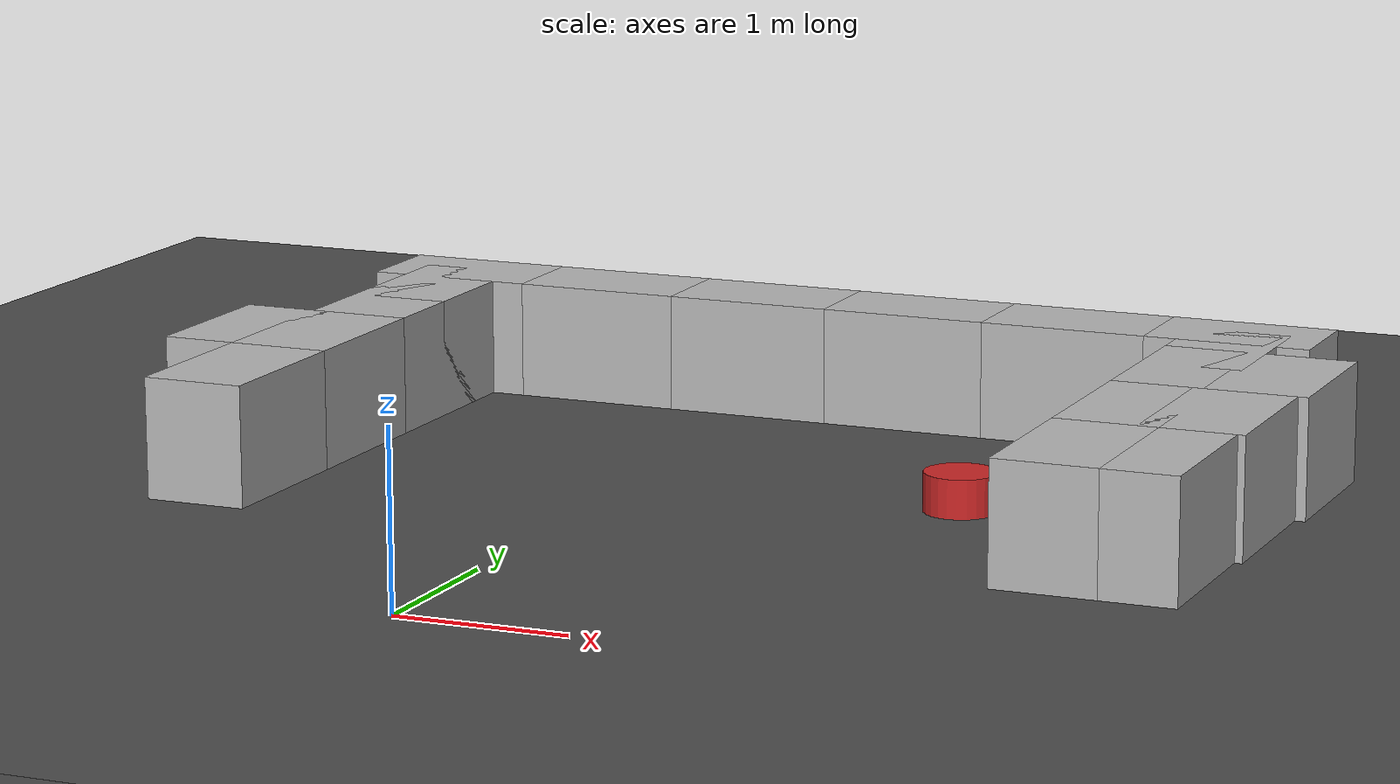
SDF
<sdf version="1.4">
 <world name="default">
  <model name="ground_plane">
   <static>1</static>
   <link name="link">
    <collision name="collision">
     <geometry><plane><normal>0 0 1</normal><size>100 100</size></plane></geometry>
     <surface><friction><ode><mu>100</mu><mu2>50</mu2></ode></friction></surface>
    </collision>
    <visual name="visual">
     <cast_shadows>0</cast_shadows>
     <geometry><plane><normal>0 0 1</normal><size>100 100</size></plane></geometry>
     <material>
      <script><uri>file://media/materials/scripts/gazebo.material</uri><name>Gazebo/Grey</name></script>
     </material>
    </visual>
    <velocity_decay><linear>0</linear><angular>0</angular></velocity_decay>
   </link>
  </model>
  <model name="wall_24">
   <static>1</static>
   <link name="link">
    <pose>0 0 0.25 0 -0 0</pose>
    <collision name="collision"><geometry><box><size>1 0.6 1</size></box></geometry></collision>
    <visual name="visual">
     <geometry>
      <mesh><uri>model://brick_box_3x1x3/meshes/simple_box.dae</uri><scale>1 0.6 1</scale></mesh>
     </geometry>
     <material>
      <script>
       <uri>model://brick_box_3x1x3/materials/scripts</uri>
       <uri>model://brick_box_3x1x3/materials/textures</uri>
       <name>BrickBox/Diffuse</name>
      </script>
     </material>
    </visual>
    <velocity_decay><linear>0</linear><angular>0</angular></velocity_decay>
   </link>
   <pose>3 5 0 0 -0 0</pose>
  </model>
  <model name="wall_25">
   <static>1</static>
   <link name="link">
    <pose>0 0 0.25 0 -0 0</pose>
    <collision name="collision"><geometry><box><size>1 0.6 1</size></box></geometry></collision>
    <visual name="visual">
     <geometry>
      <mesh><uri>model://brick_box_3x1x3/meshes/simple_box.dae</uri><scale>1 0.6 1</scale></mesh>
     </geometry>
     <material>
      <script>
       <uri>model://brick_box_3x1x3/materials/scripts</uri>
       <uri>model://brick_box_3x1x3/materials/textures</uri>
       <name>BrickBox/Diffuse</name>
      </script>
     </material>
    </visual>
    <velocity_decay><linear>0</linear><angular>0</angular></velocity_decay>
   </link>
   <pose>2 5 0 0 -0 0</pose>
  </model>
  <model name="wall_26">
   <static>1</static>
   <link name="link">
    <pose>0 0 0.25 0 -0 0</pose>
    <collision name="collision"><geometry><box><size>1 0.6 1</size></box></geometry></collision>
    <visual name="visual">
     <geometry>
      <mesh><uri>model://brick_box_3x1x3/meshes/simple_box.dae</uri><scale>1 0.6 1</scale></mesh>
     </geometry>
     <material>
      <script>
       <uri>model://brick_box_3x1x3/materials/scripts</uri>
       <uri>model://brick_box_3x1x3/materials/textures</uri>
       <name>BrickBox/Diffuse</name>
      </script>
     </material>
    </visual>
    <velocity_decay><linear>0</linear><angular>0</angular></velocity_decay>
   </link>
   <pose>1 5 0 0 -0 0</pose>
  </model>
  <model name="wall_28">
   <static>1</static>
   <link name="link">
    <pose>0 0 0.25 0 -0 0</pose>
    <collision name="collision"><geometry><box><size>1 0.6 1</size></box></geometry></collision>
    <visual name="visual">
     <geometry>
      <mesh><uri>model://brick_box_3x1x3/meshes/simple_box.dae</uri><scale>1 0.6 1</scale></mesh>
     </geometry>
     <material>
      <script>
       <uri>model://brick_box_3x1x3/materials/scripts</uri>
       <uri>model://brick_box_3x1x3/materials/textures</uri>
       <name>BrickBox/Diffuse</name>
      </script>
     </material>
    </visual>
    <velocity_decay><linear>0</linear><angular>0</angular></velocity_decay>
   </link>
   <pose>-1 5 0 0 -0 0</pose>
  </model>
  <model name="wall_29">
   <static>1</static>
   <link name="link">
    <pose>0 0 0.25 0 -0 0</pose>
    <collision name="collision"><geometry><box><size>1 0.6 1</size></box></geometry></collision>
    <visual name="visual">
     <geometry>
      <mesh><uri>model://brick_box_3x1x3/meshes/simple_box.dae</uri><scale>1 0.6 1</scale></mesh>
     </geometry>
     <material>
      <script>
       <uri>model://brick_box_3x1x3/materials/scripts</uri>
       <uri>model://brick_box_3x1x3/materials/textures</uri>
       <name>BrickBox/Diffuse</name>
      </script>
     </material>
    </visual>
    <velocity_decay><linear>0</linear><angular>0</angular></velocity_decay>
   </link>
   <pose>-2 5 0 0 -0 0</pose>
  </model>
  <model name="wall_66">
   <static>1</static>
   <link name="link">
    <pose>0 0 0.25 0 -0 0</pose>
    <collision name="collision"><geometry><box><size>1 0.6 1</size></box></geometry></collision>
    <visual name="visual">
     <geometry>
      <mesh><uri>model://brick_box_3x1x3/meshes/simple_box.dae</uri><scale>1 0.6 1</scale></mesh>
     </geometry>
     <material>
      <script>
       <uri>model://brick_box_3x1x3/materials/scripts</uri>
       <uri>model://brick_box_3x1x3/materials/textures</uri>
       <name>BrickBox/Diffuse</name>
      </script>
     </material>
    </visual>
    <velocity_decay><linear>0</linear><angular>0</angular></velocity_decay>
   </link>
   <pose>0 5 0 0 -0 0</pose>
  </model>
  <model name="wall_124">
   <static>1</static>
   <link name="link">
    <pose>0 0 0.25 0 -0 0</pose>
    <collision name="collision"><geometry><box><size>0.6 1 1</size></box></geometry></collision>
    <visual name="visual">
     <geometry>
      <mesh><uri>model://brick_box_3x1x3/meshes/simple_box.dae</uri><scale>0.6 1 1</scale></mesh>
     </geometry>
     <material>
      <script>
       <uri>model://brick_box_3x1x3/materials/scripts</uri>
       <uri>model://brick_box_3x1x3/materials/textures</uri>
       <name>BrickBox/Diffuse</name>
      </script>
     </material>
    </visual>
    <velocity_decay><linear>0</linear><angular>0</angular></velocity_decay>
   </link>
   <pose>3.43454 2 0 0 -0 0</pose>
  </model>
  <model name="wall_125">
   <static>1</static>
   <link name="link">
    <pose>0 0 0.25 0 -0 0</pose>
    <collision name="collision"><geometry><box><size>0.6 1 1</size></box></geometry></collision>
    <visual name="visual">
     <geometry>
      <mesh><uri>model://brick_box_3x1x3/meshes/simple_box.dae</uri><scale>0.6 1 1</scale></mesh>
     </geometry>
     <material>
      <script>
       <uri>model://brick_box_3x1x3/materials/scripts</uri>
       <uri>model://brick_box_3x1x3/materials/textures</uri>
       <name>BrickBox/Diffuse</name>
      </script>
     </material>
    </visual>
    <velocity_decay><linear>0</linear><angular>0</angular></velocity_decay>
   </link>
   <pose>3 2 0 0 -0 0</pose>
  </model>
  <model name="wall_126">
   <static>1</static>
   <link name="link">
    <pose>0 0 0.25 0 -0 0</pose>
    <collision name="collision"><geometry><box><size>0.6 1 1</size></box></geometry></collision>
    <visual name="visual">
     <geometry>
      <mesh><uri>model://brick_box_3x1x3/meshes/simple_box.dae</uri><scale>0.6 1 1</scale></mesh>
     </geometry>
     <material>
      <script>
       <uri>model://brick_box_3x1x3/materials/scripts</uri>
       <uri>model://brick_box_3x1x3/materials/textures</uri>
       <name>BrickBox/Diffuse</name>
      </script>
     </material>
    </visual>
    <velocity_decay><linear>0</linear><angular>0</angular></velocity_decay>
   </link>
   <pose>3 3 0 0 -0 0</pose>
  </model>
  <model name="wall_127">
   <static>1</static>
   <link name="link">
    <pose>0 0 0.25 0 -0 0</pose>
    <collision name="collision"><geometry><box><size>0.6 1 1</size></box></geometry></collision>
    <visual name="visual">
     <geometry>
      <mesh><uri>model://brick_box_3x1x3/meshes/simple_box.dae</uri><scale>0.6 1 1</scale></mesh>
     </geometry>
     <material>
      <script>
       <uri>model://brick_box_3x1x3/materials/scripts</uri>
       <uri>model://brick_box_3x1x3/materials/textures</uri>
       <name>BrickBox/Diffuse</name>
      </script>
     </material>
    </visual>
    <velocity_decay><linear>0</linear><angular>0</angular></velocity_decay>
   </link>
   <pose>3 4 0 0 -0 0</pose>
  </model>
  <model name="wall_128">
   <static>1</static>
   <link name="link">
    <pose>0 0 0.25 0 -0 0</pose>
    <collision name="collision"><geometry><box><size>0.6 1 1</size></box></geometry></collision>
    <visual name="visual">
     <geometry>
      <mesh><uri>model://brick_box_3x1x3/meshes/simple_box.dae</uri><scale>0.6 1 1</scale></mesh>
     </geometry>
     <material>
      <script>
       <uri>model://brick_box_3x1x3/materials/scripts</uri>
       <uri>model://brick_box_3x1x3/materials/textures</uri>
       <name>BrickBox/Diffuse</name>
      </script>
     </material>
    </visual>
    <velocity_decay><linear>0</linear><angular>0</angular></velocity_decay>
   </link>
   <pose>3.47781 3 0 0 -0 0</pose>
  </model>
  <model name="wall_129">
   <static>1</static>
   <link name="link">
    <pose>0 0 0.25 0 -0 0</pose>
    <collision name="collision"><geometry><box><size>0.6 1 1</size></box></geometry></collision>
    <visual name="visual">
     <geometry>
      <mesh><uri>model://brick_box_3x1x3/meshes/simple_box.dae</uri><scale>0.6 1 1</scale></mesh>
     </geometry>
     <material>
      <script>
       <uri>model://brick_box_3x1x3/materials/scripts</uri>
       <uri>model://brick_box_3x1x3/materials/textures</uri>
       <name>BrickBox/Diffuse</name>
      </script>
     </material>
    </visual>
    <velocity_decay><linear>0</linear><angular>0</angular></velocity_decay>
   </link>
   <pose>3.53724 4 0 0 -0 0</pose>
  </model>
  <model name="wall_130">
   <static>1</static>
   <link name="link">
    <pose>0 0 0.25 0 -0 0</pose>
    <collision name="collision"><geometry><box><size>0.6 1 1</size></box></geometry></collision>
    <visual name="visual">
     <geometry>
      <mesh><uri>model://brick_box_3x1x3/meshes/simple_box.dae</uri><scale>0.6 1 1</scale></mesh>
     </geometry>
     <material>
      <script>
       <uri>model://brick_box_3x1x3/materials/scripts</uri>
       <uri>model://brick_box_3x1x3/materials/textures</uri>
       <name>BrickBox/Diffuse</name>
      </script>
     </material>
    </visual>
    <velocity_decay><linear>0</linear><angular>0</angular></velocity_decay>
   </link>
   <pose>3 4.52159 0 0 -0 0</pose>
  </model>
  <model name="wall_149">
   <static>1</static>
   <link name="link">
    <pose>0 0 0.25 0 -0 0</pose>
    <collision name="collision"><geometry><box><size>0.6 1 1</size></box></geometry></collision>
    <visual name="visual">
     <geometry>
      <mesh><uri>model://brick_box_3x1x3/meshes/simple_box.dae</uri><scale>0.6 1 1</scale></mesh>
     </geometry>
     <material>
      <script>
       <uri>model://brick_box_3x1x3/materials/scripts</uri>
       <uri>model://brick_box_3x1x3/materials/textures</uri>
       <name>BrickBox/Diffuse</name>
      </script>
     </material>
    </visual>
    <velocity_decay><linear>0</linear><angular>0</angular></velocity_decay>
   </link>
   <pose>-2 4 0 0 -0 0</pose>
  </model>
  <model name="wall_150">
   <static>1</static>
   <link name="link">
    <pose>0 0 0.25 0 -0 0</pose>
    <collision name="collision"><geometry><box><size>0.6 1 1</size></box></geometry></collision>
    <visual name="visual">
     <geometry>
      <mesh><uri>model://brick_box_3x1x3/meshes/simple_box.dae</uri><scale>0.6 1 1</scale></mesh>
     </geometry>
     <material>
      <script>
       <uri>model://brick_box_3x1x3/materials/scripts</uri>
       <uri>model://brick_box_3x1x3/materials/textures</uri>
       <name>BrickBox/Diffuse</name>
      </script>
     </material>
    </visual>
    <velocity_decay><linear>0</linear><angular>0</angular></velocity_decay>
   </link>
   <pose>-2 3 0 0 -0 0</pose>
  </model>
  <model name="wall_151">
   <static>1</static>
   <link name="link">
    <pose>0 0 0.25 0 -0 0</pose>
    <collision name="collision"><geometry><box><size>0.6 1 1</size></box></geometry></collision>
    <visual name="visual">
     <geometry>
      <mesh><uri>model://brick_box_3x1x3/meshes/simple_box.dae</uri><scale>0.6 1 1</scale></mesh>
     </geometry>
     <material>
      <script>
       <uri>model://brick_box_3x1x3/materials/scripts</uri>
       <uri>model://brick_box_3x1x3/materials/textures</uri>
       <name>BrickBox/Diffuse</name>
      </script>
     </material>
    </visual>
    <velocity_decay><linear>0</linear><angular>0</angular></velocity_decay>
   </link>
   <pose>-2 2 0 0 -0 0</pose>
  </model>
  <model name="wall_154">
   <static>1</static>
   <link name="link">
    <pose>0 0 0.25 0 -0 0</pose>
    <collision name="collision"><geometry><box><size>0.6 1 1</size></box></geometry></collision>
    <visual name="visual">
     <geometry>
      <mesh><uri>model://brick_box_3x1x3/meshes/simple_box.dae</uri><scale>0.6 1 1</scale></mesh>
     </geometry>
     <material>
      <script>
       <uri>model://brick_box_3x1x3/materials/scripts</uri>
       <uri>model://brick_box_3x1x3/materials/textures</uri>
       <name>BrickBox/Diffuse</name>
      </script>
     </material>
    </visual>
    <velocity_decay><linear>0</linear><angular>0</angular></velocity_decay>
   </link>
   <pose>-2.43859 3 0 0 -0 0</pose>
  </model>
  <model name="wall_156">
   <static>1</static>
   <link name="link">
    <pose>0 0 0.25 0 -0 0</pose>
    <collision name="collision"><geometry><box><size>0.6 1 1</size></box></geometry></collision>
    <visual name="visual">
     <geometry>
      <mesh><uri>model://brick_box_3x1x3/meshes/simple_box.dae</uri><scale>0.6 1 1</scale></mesh>
     </geometry>
     <material>
      <script>
       <uri>model://brick_box_3x1x3/materials/scripts</uri>
       <uri>model://brick_box_3x1x3/materials/textures</uri>
       <name>BrickBox/Diffuse</name>
      </script>
     </material>
    </visual>
    <velocity_decay><linear>0</linear><angular>0</angular></velocity_decay>
   </link>
   <pose>-2 4.52759 0 0 -0 0</pose>
  </model>
  <model name="movable_0">
   <link name="link">
    <pose>0 0 0.23 0 -0 0</pose>
    <collision name="collision">
     <geometry><cylinder><radius>0.0001</radius><length>0.001</length></cylinder></geometry>
    </collision>
    <visual name="visual">
     <geometry><cylinder><radius>0.21</radius><length>0.45</length></cylinder></geometry>
     <material>
      <script><uri>file://media/materials/scripts/gazebo.material</uri><name>Gazebo/Red</name></script>
     </material>
    </visual>
    <velocity_decay><linear>0</linear><angular>0</angular></velocity_decay>
    <inertial>
     <inertia><ixx>1</ixx><ixy>0</ixy><ixz>0</ixz><iyy>1</iyy><iyz>0</iyz><izz>1</izz></inertia>
     <mass>1</mass>
    </inertial>
   </link>
   <pose>1.99981 2.99955 -0.179509 -0.001961 0.000813 -1e-06</pose>
   <static>0</static>
  </model>
  <model name="asphalt_plane">
   <static>1</static>
   <link name="link">
    <collision name="collision"><geometry><box><size>20 20 0.1</size></box></geometry></collision>
    <visual name="visual">
     <cast_shadows>0</cast_shadows>
     <geometry><box><size>20 20 0.1</size></box></geometry>
     <material>
      <script>
       <uri>model://asphalt_plane/materials/scripts</uri>
       <uri>model://asphalt_plane/materials/textures</uri>
       <name>vrc/asphalt</name>
      </script>
     </material>
    </visual>
    <velocity_decay><linear>0</linear><angular>0</angular></velocity_decay>
   </link>
  </model>
 </world>
</sdf>
